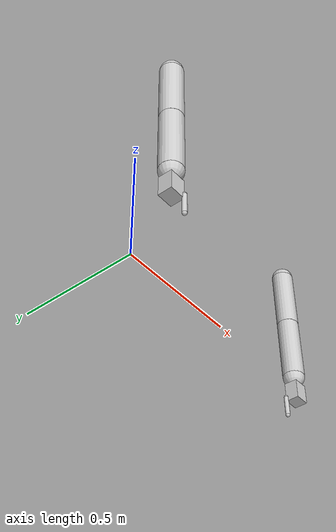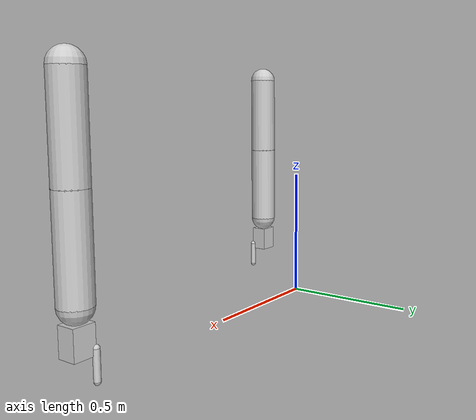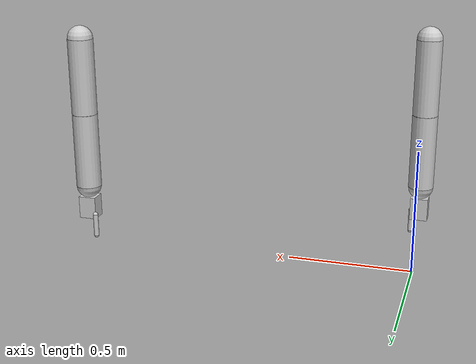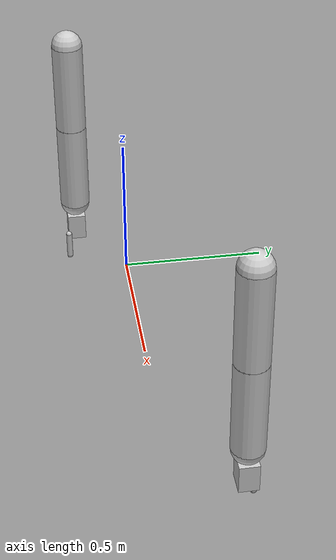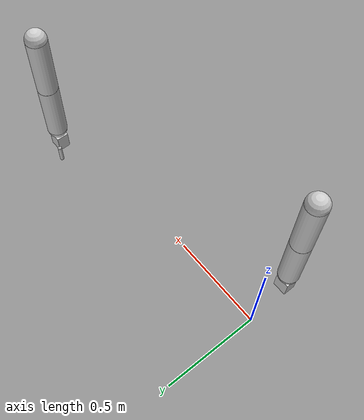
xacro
<?xml version="1.0"?>
<robot xmlns:xacro="http://ros.org/wiki/xacro" name="pha9">
<!--       xmlns:xi="http://www.w3.org/2001/XInclude"-->
<!--       xmlns:gazebo="http://playerstage.sourceforge.net/gazebo/xmlschema/#gz"-->
<!--       xmlns:model="http://playerstage.sourceforge.net/gazebo/xmlschema/#model"-->
<!--       xmlns:sensor="http://playerstage.sourceforge.net/gazebo/xmlschema/#sensor"-->
<!--       xmlns:body="http://playerstage.sourceforge.net/gazebo/xmlschema/#body"-->
<!--       xmlns:geom="http://playerstage.sourceforge.net/gazebo/xmlschema/#geom"-->
<!--       xmlns:joint="http://playerstage.sourceforge.net/gazebo/xmlschema/#joint"-->
<!--       xmlns:interface="http://playerstage.sourceforge.net/gazebo/xmlschema/#interface"-->
<!--       xmlns:rendering="http://playerstage.sourceforge.net/gazebo/xmlschema/#rendering"-->
<!--       xmlns:renderable="http://playerstage.sourceforge.net/gazebo/xmlschema/#renderable"-->
<!--       xmlns:controller="http://playerstage.sourceforge.net/gazebo/xmlschema/#controller"-->
<!--       xmlns:physics="http://playerstage.sourceforge.net/gazebo/xmlschema/#physics">-->

  <!-- defines some code blocks -->
  <xacro:include filename="$(find pha9_model)/urdf/macros.urdf.xacro"/>

  <!--A hack property just to try-->

  <!-- Geometrical properties -->
  <xacro:property name="pha9_altitude" value="0.9" />
  <xacro:property name="pha9_shift_y" value="-0.175" />
  <xacro:property name="pha9_shift_x_second" value="1.30" />

  <xacro:property name="radius_shoulder" value="0.05" />
  <xacro:property name="length_limb" value="0.3" />
  <xacro:property name="depth_hand" value="0.06" /> <!-- epaisseur -->
  <xacro:property name="width_hand" value="0.07" /> <!-- largeur -->
  <xacro:property name="length_hand" value="0.09" />
  <xacro:property name="radius_metacarp" value="0.01" />

  <xacro:property name="table_x" value="0.65" />
  <xacro:property name="table_y" value="0.0" />
  <xacro:property name="table_z" value="0.0" />
  <xacro:property name="table_top_thickness" value="0.035"/>

  <xacro:property name="mass0" value="10000.0" /> <!-- unreal but so that the arm doesn't shake -->
  <xacro:property name="velocitymax" value="6.5" />
  <xacro:property name="effortmax" value="1000" />

  <xacro:property name="M_PI" value="3.1415926535897931" />

  <!-- Materials -->
  <material name="gray">
    <color rgba="0.80 0.80 0.80 1.00"/>
  </material>

	<!-- Template to use -->
  <!-- Joint name provided by the macro, see macos.urdf.xacro file -->

  <!-- World -->
  <link name="world">
  </link>

<!-- ############################# FIRST ARM ############################# -->

  <!-- World fixed joint-->
  <joint name="world_to_first_base_link" type="fixed">
    <origin xyz="0 ${pha9_shift_y} ${pha9_altitude}" rpy="0 0 0"/>
    <parent link="world"/>
    <child link="first_base_link"/>
  </joint>

  <xacro:sphere_link which="first" title="base_link" radius="${radius_shoulder}" mass="${mass0}">
    <origin xyz="0 0 0" rpy="0 0 0"/>
  </xacro:sphere_link>

  <xacro:revolute_joint which="first" parent="base_link" child="auxShould" axis="0 1 0" lower="${-M_PI}" upper="${M_PI/2}" effort="${effortmax}" velocity="${velocitymax}">
    <origin xyz="0 0 0"/>
  </xacro:revolute_joint>

  <xacro:sphere_link which="first" title="auxShould" radius="${radius_shoulder}" mass="${mass0}">
    <origin xyz="0 0 0" rpy="0 0 0"/>
  </xacro:sphere_link>

  <xacro:revolute_joint which="first" parent="auxShould" child="shoulder" axis="1 0 0" lower="${-2*M_PI/3}" upper="0" effort="${effortmax}" velocity="${velocitymax}">
    <origin xyz="0 0 0" rpy="0 0 0"/>
  </xacro:revolute_joint>

  <xacro:sphere_link which="first" title="shoulder" radius="${radius_shoulder}" mass="${mass0}">
    <origin xyz="0 0 0" rpy="0 0 0"/>
  </xacro:sphere_link>

  <xacro:revolute_joint which="first" parent="shoulder" child="upperArm" axis="0 0 1" lower="${-M_PI/2}" upper="${M_PI/2}" effort="${effortmax}" velocity="${velocitymax}">
    <origin xyz="0 0 0"/>
  </xacro:revolute_joint>

  <xacro:cylinder_link which="first" title="upperArm" radius="${radius_shoulder}" length="${length_limb}" mass="${mass0}">
    <origin xyz="0 0 ${-length_limb/2}" rpy="0 0 0"/>
  </xacro:cylinder_link>

  <xacro:revolute_joint which="first" parent="upperArm" child="elbow" axis="0 1 0" lower="${-5*M_PI/6}" upper="0" effort="${effortmax}" velocity="${velocitymax}">
    <origin xyz="0 0 ${-length_limb}"/>
  </xacro:revolute_joint>

  <xacro:sphere_link which="first" title="elbow" radius="${radius_shoulder}" mass="${mass0}">
    <origin xyz="0 0 0" rpy="0 0 0"/>
  </xacro:sphere_link>

  <xacro:revolute_joint which="first" parent="elbow" child="foreArm" axis="0 0 1" lower="${-2*M_PI/3}" upper="${2*M_PI/3}" effort="${effortmax}" velocity="${velocitymax}">
    <origin xyz="0 0 0"/>
  </xacro:revolute_joint>

  <xacro:cylinder_link which="first" title="foreArm" radius="${radius_shoulder}" length="${length_limb}" mass="${mass0}">
    <origin xyz="0 0 ${-length_limb/2}" rpy="0 0 0"/>
  </xacro:cylinder_link>

  <xacro:revolute_joint which="first" parent="foreArm" child="wrist" axis="1 0 0" lower="${-M_PI/4}" upper="${0.9*M_PI/2}" effort="${effortmax}" velocity="${velocitymax}">
    <origin xyz="0 0 ${-length_limb}"/>
  </xacro:revolute_joint>

  <xacro:sphere_link which="first" title="wrist" radius="${radius_shoulder}" mass="${mass0}">
    <origin xyz="0 0 0" rpy="0 0 0"/>
  </xacro:sphere_link>

  <xacro:revolute_joint which="first" parent="wrist" child="hand" axis="0 1 0" lower="${-M_PI/4}" upper="${M_PI/4}" effort="${effortmax}" velocity="${velocitymax}">
    <origin xyz="0 0 0"/>
  </xacro:revolute_joint>

  <xacro:box_link which="first" title="hand" width="${width_hand}" depth="${depth_hand}" length="${length_hand}" mass="${mass0}">
    <origin xyz="0 0 ${-length_hand}" rpy="0 0 0"/>
  </xacro:box_link>

  <xacro:revolute_joint which="first" parent="hand" child="metacarp" axis="1 0 0" lower="${-M_PI/6}" upper="${3*M_PI/8}" effort="${effortmax}" velocity="${velocitymax}">
    <origin xyz="${width_hand/2} ${-depth_hand/2} ${-length_hand-radius_shoulder/2}"/>
  </xacro:revolute_joint>

  <xacro:sphere_link which="first" title="metacarp" radius="${radius_metacarp}" mass="${mass0}">
    <origin xyz="0 0 0" rpy="0 0 0"/>
  </xacro:sphere_link>

  <xacro:revolute_joint which="first" parent="metacarp" child="finger" axis="0 1 0" lower="${-M_PI/8}" upper="${M_PI/8}" effort="${effortmax}" velocity="${velocitymax}">
    <origin xyz="0 0 0"/>
  </xacro:revolute_joint>

  <xacro:cylinder_link which="first" title="finger" radius="${radius_metacarp}" length="${length_hand}" mass="${mass0}">
    <origin xyz="0 0 ${-length_hand/2}" rpy="0 0 0"/>
  </xacro:cylinder_link>

  <joint name="first_artifice" type="fixed">
    <parent link="first_finger"/>
    <child link="first_EE"/>
    <origin xyz="0 0 ${-length_hand-radius_metacarp/2}"/>
  </joint>
	<!-- dois-je mettre une transmission si osef de cet first_first_artifice?-->

  <xacro:sphere_link which="first" title="EE" radius="${radius_metacarp}" mass="${mass0}">
    <origin xyz="0 0 ${radius_metacarp/2}" rpy="0 0 0"/>
  </xacro:sphere_link>

<!-- ############################# SECOND ARM ############################# -->

  <!-- World fixed joint-->
  <joint name="world_to_second_base_link" type="fixed">
    <origin xyz="${pha9_shift_x_second} ${-pha9_shift_y} ${pha9_altitude}" rpy="0 0 ${M_PI}"/>
    <parent link="world"/>
    <child link="second_base_link"/>
  </joint>

  <xacro:sphere_link which="second" title="base_link" radius="${radius_shoulder}" mass="${mass0}">
    <origin xyz="0 0 0" rpy="0 0 0"/>
  </xacro:sphere_link>

  <xacro:revolute_joint which="second" parent="base_link" child="auxShould" axis="0 1 0" lower="${-M_PI}" upper="${M_PI/2}" effort="${effortmax}" velocity="${velocitymax}">
    <origin xyz="0 0 0"/>
  </xacro:revolute_joint>

  <xacro:sphere_link which="second" title="auxShould" radius="${radius_shoulder}" mass="${mass0}">
    <origin xyz="0 0 0" rpy="0 0 0"/>
  </xacro:sphere_link>

  <xacro:revolute_joint which="second" parent="auxShould" child="shoulder" axis="1 0 0" lower="${-2*M_PI/3}" upper="0" effort="${effortmax}" velocity="${velocitymax}">
    <origin xyz="0 0 0" rpy="0 0 0"/>
  </xacro:revolute_joint>

  <xacro:sphere_link which="second" title="shoulder" radius="${radius_shoulder}" mass="${mass0}">
    <origin xyz="0 0 0" rpy="0 0 0"/>
  </xacro:sphere_link>

  <xacro:revolute_joint which="second" parent="shoulder" child="upperArm" axis="0 0 1" lower="${-M_PI/2}" upper="${M_PI/2}" effort="${effortmax}" velocity="${velocitymax}">
    <origin xyz="0 0 0"/>
  </xacro:revolute_joint>

  <xacro:cylinder_link which="second" title="upperArm" radius="${radius_shoulder}" length="${length_limb}" mass="${mass0}">
    <origin xyz="0 0 ${-length_limb/2}" rpy="0 0 0"/>
  </xacro:cylinder_link>

  <xacro:revolute_joint which="second" parent="upperArm" child="elbow" axis="0 1 0" lower="${-5*M_PI/6}" upper="0" effort="${effortmax}" velocity="${velocitymax}">
    <origin xyz="0 0 ${-length_limb}"/>
  </xacro:revolute_joint>

  <xacro:sphere_link which="second" title="elbow" radius="${radius_shoulder}" mass="${mass0}">
    <origin xyz="0 0 0" rpy="0 0 0"/>
  </xacro:sphere_link>

  <xacro:revolute_joint which="second" parent="elbow" child="foreArm" axis="0 0 1" lower="${-2*M_PI/3}" upper="${2*M_PI/3}" effort="${effortmax}" velocity="${velocitymax}">
    <origin xyz="0 0 0"/>
  </xacro:revolute_joint>

  <xacro:cylinder_link which="second" title="foreArm" radius="${radius_shoulder}" length="${length_limb}" mass="${mass0}">
    <origin xyz="0 0 ${-length_limb/2}" rpy="0 0 0"/>
  </xacro:cylinder_link>

  <xacro:revolute_joint which="second" parent="foreArm" child="wrist" axis="1 0 0" lower="${-M_PI/4}" upper="${0.9*M_PI/2}" effort="${effortmax}" velocity="${velocitymax}">
    <origin xyz="0 0 ${-length_limb}"/>
  </xacro:revolute_joint>

  <xacro:sphere_link which="second" title="wrist" radius="${radius_shoulder}" mass="${mass0}">
    <origin xyz="0 0 0" rpy="0 0 0"/>
  </xacro:sphere_link>

  <xacro:revolute_joint which="second" parent="wrist" child="hand" axis="0 1 0" lower="${-M_PI/4}" upper="${M_PI/4}" effort="${effortmax}" velocity="${velocitymax}">
    <origin xyz="0 0 0"/>
  </xacro:revolute_joint>

  <xacro:box_link which="second" title="hand" width="${width_hand}" depth="${depth_hand}" length="${length_hand}" mass="${mass0}">
    <origin xyz="0 0 ${-length_hand}" rpy="0 0 0"/>
  </xacro:box_link>

  <xacro:revolute_joint which="second" parent="hand" child="metacarp" axis="1 0 0" lower="${-M_PI/6}" upper="${3*M_PI/8}" effort="${effortmax}" velocity="${velocitymax}">
    <origin xyz="${width_hand/2} ${-depth_hand/2} ${-length_hand-radius_shoulder/2}"/>
  </xacro:revolute_joint>

  <xacro:sphere_link which="second" title="metacarp" radius="${radius_metacarp}" mass="${mass0}">
    <origin xyz="0 0 0" rpy="0 0 0"/>
  </xacro:sphere_link>

  <xacro:revolute_joint which="second" parent="metacarp" child="finger" axis="0 1 0" lower="${-M_PI/8}" upper="${M_PI/8}" effort="${effortmax}" velocity="${velocitymax}">
    <origin xyz="0 0 0"/>
  </xacro:revolute_joint>

  <xacro:cylinder_link which="second" title="finger" radius="${radius_metacarp}" length="${length_hand}" mass="${mass0}">
    <origin xyz="0 0 ${-length_hand/2}" rpy="0 0 0"/>
  </xacro:cylinder_link>

  <joint name="second_artifice" type="fixed">
    <parent link="second_finger"/>
    <child link="second_EE"/>
    <origin xyz="0 0 ${-length_hand-radius_metacarp/2}"/>
  </joint>
	<!-- dois-je mettre une transmission si osef de cet second_second_artifice?-->

  <xacro:sphere_link which="second" title="EE" radius="${radius_metacarp}" mass="${mass0}">
    <origin xyz="0 0 ${radius_metacarp/2}" rpy="0 0 0"/>
  </xacro:sphere_link>

<!-- ############################# END SECOND ARM ############################# -->

	<!-- Gazebo plugin for ROS control -->
	<gazebo>
		<plugin name="gazebo_ros_control" filename="libgazebo_ros_control.so">
			<robotNamespace>/pha9</robotNamespace>
			<robotSimType>gazebo_ros_control/DefaultRobotHWSim</robotSimType>
		</plugin>
	</gazebo>

</robot>

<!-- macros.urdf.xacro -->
<robot xmlns:xacro="http://ros.org/wiki/xacro">

  <!-- Generates a box visual/collision/inertial -->
  <!-- this doesn't work -->
  <xacro:macro name="box_link" params="which title width depth length mass:=0.01 *origin">
    <link name="${which}_${title}">
		  <xacro:macro name="box_geometry">
        <xacro:insert_block name="origin"/>
		    <geometry>
		      <box size="${width} ${depth} ${length}"/>
		    </geometry>
		  </xacro:macro>

		  <visual>
		    <xacro:box_geometry/>
		    <material name="gray"/>
		  </visual>

		  <collision>
		    <xacro:box_geometry/>
		  </collision>

		  <inertial>
        <xacro:insert_block name="origin"/>
		    <mass value="${mass}"/>
		    <inertia ixx="${(mass/3)*(depth*depth+length*length)}"
		             iyy="${(mass/3)*(width*width+length*length)}"
		             izz="${(mass/3)*(depth*depth+width*width)}"
		             ixy="0" ixz="0" iyz="0"/>
		  </inertial>
    </link>
  </xacro:macro>

  <!-- Generates a sphere visual/collision/inertial -->
  <xacro:macro name="sphere_link" params="which title radius mass:=0.01 *origin">
    <link name="${which}_${title}">
		  <xacro:macro name="sphere_geometry">
        <xacro:insert_block name="origin"/>
		    <geometry>
		      <sphere radius="${radius}"/>
		    </geometry>
		  </xacro:macro>

		  <visual>
		    <xacro:sphere_geometry/>
		    <material name="gray"/>
		  </visual>

		  <collision>
		    <xacro:sphere_geometry/>
		  </collision>

		  <inertial>
        <xacro:insert_block name="origin"/>
		    <mass value="${mass}"/>
		    <inertia ixx="${(2/5)*mass*radius*radius}"
		             iyy="${(2/5)*mass*radius*radius}"
		             izz="${(2/5)*mass*radius*radius}"
		             ixy="0" ixz="0" iyz="0"/>
		  </inertial>
    </link>
  </xacro:macro>

  <!-- Generates a cylinder visual/collision/inertial -->
  <xacro:macro name="cylinder_link" params="which title radius length mass:=0.01 *origin">
    <link name="${which}_${title}">
		  <xacro:macro name="cylinder_geometry">
        <xacro:insert_block name="origin"/>
		    <geometry>
		      <cylinder radius="${radius}" length="${length}"/>
		    </geometry>
		  </xacro:macro>

		  <visual>
		    <xacro:cylinder_geometry/>
		    <material name="gray"/>
		  </visual>

		  <collision>
		    <xacro:cylinder_geometry/>
		  </collision>

		  <inertial>
        <xacro:insert_block name="origin"/>
		    <mass value="${mass}"/>
		    <inertia ixx="${(1/4)*mass*radius*radius + (1/3)*mass*length*length}"
		             iyy="${(1/4)*mass*radius*radius + (1/3)*mass*length*length}"
		             izz="${(1/2)*mass*radius*radius}"
		             ixy="0" ixz="0" iyz="0"/>
		  </inertial>
  </link>
  </xacro:macro>

  <!-- Generates revolute child joint of parent -->
  <xacro:macro name="revolute_joint" params="which parent child axis lower upper effort velocity *origin">
    <joint name="${which}_${parent}_to_${which}_${child}" type="revolute">
      <xacro:insert_block name="origin"/>
      <parent link="${which}_${parent}"/>
      <child link="${which}_${child}"/>
      <axis xyz="${axis}"/>
      <limit effort="${effort}"
             velocity="${velocity}"
             lower="${lower}"
             upper="${upper}"/>
    </joint>

    <!-- Required for ROS control -->
    <transmission name="${which}_${parent}_to_${which}_${child}_trans">
      <type>transmission_interface/SimpleTransmission</type>
      <joint name="${which}_${parent}_to_${which}_${child}">
        <hardwareInterface>hardware_interface/PositionJointInterface</hardwareInterface>
      </joint>
      <actuator name="${which}_${parent}_to_${which}_${child}_motor">
        <hardwareInterface>hardware_interface/PositionJointInterface</hardwareInterface>
        <mechanicalReduction>1</mechanicalReduction>
      </actuator>
    </transmission>

    <!-- Not sure if it is useful -->
  </xacro:macro>

</robot>
